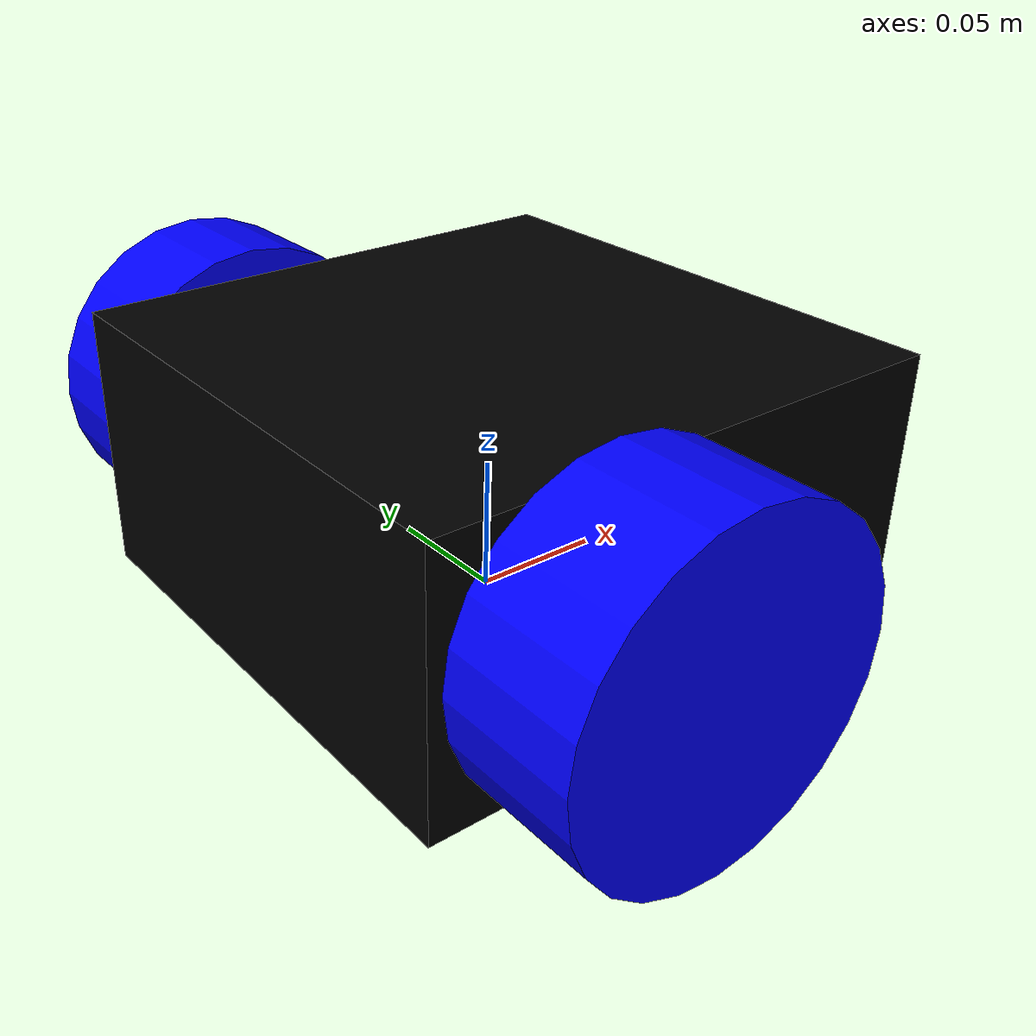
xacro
<?xml version="1.0"?>
<robot xmlns:xacro="https://www.ros.org/wiki/xacro">

    <xacro:include filename='inertial_macros.xacro'/>

    <!--SETTING UP MATERIAL AND COLORS-->
    <material name='white'>
        <color rgba='1 1 1 1' />
    </material>

    <material name='black'>
        <color rgba='0 0 0 1' />
    </material>

    <material name='blue'>
        <color rgba='0 0 1 1' />
    </material>

    <material name='red'>
        <color rgba='1 0 0 1' />
    </material>

    <!--CREAATING BASE LINK-->

    <link name='base_link'>

    </link>

    <!--BODY LINK-->

    <joint name='body_joint' type='fixed'>
        <parent link='base_link'/>
        <child link ='body'/>
        <origin xyz='-0.1 0 0'/>
    </joint>

    <link name='body'>
        <visual>
            <origin xyz='0.1 0 0.05'/>
            <geometry>
                <box size='0.2 0.2 0.1'/>
            </geometry>
            <material name="black"/>
        </visual>

        <collision>
            <origin xyz='0.1 0 0.05'/>
            <geometry>
                <box size='0.2 0.2 0.1'/>
            </geometry>
        </collision>
        <xacro:inertial_box mass='0.5' x='0.2' y='0.2' z='0.1'>
            <origin xyz='0.1 0 0.05' rpy='0 0 0'/>
        </xacro:inertial_box>
    </link>

    <gazebo reference='body'>
        <material>Gazebo/Black</material>
    </gazebo>

    <!--LEFT WHEEL LINK-->

    <joint name='left_wheel_joint' type='continuous'>
        <parent link='base_link'/>
        <child link='left_wheel_link'/>
        <origin xyz='-0.035 0.125 0.05' rpy='-${pi/2} 0 0'/>
        <axis xyz='0 0 1'/>
    </joint>

    <link name='left_wheel_link'>
        <visual>
            <geometry>
                <cylinder radius='0.06' length='0.05'/>
            </geometry>
            <material name='blue'/>
        </visual>

        <collision>
            <geometry>
                <cylinder radius='0.06' length='0.05'/>
            </geometry>
        </collision>
        <xacro:inertial_cylinder mass='0.1' length='0.05' radius='0.06'>
            <origin xyz='0 0 0' rpy='0 0 0'/>
        </xacro:inertial_cylinder>
    </link>

    <gazebo reference='left_wheel_link'>
        <material>Gazebo/Blue</material>
    </gazebo>

    <!--RIGHT WHEEL LINK-->

    <joint name='right_wheel_joint' type='continuous'>
        <parent link='base_link'/>
        <child link='right_wheel_link'/>
        <origin xyz='-0.035 -0.125 0.05' rpy='${pi/2} 0 0'/>
        <axis xyz='0 0 -1'/>
    </joint>

    <link name='right_wheel_link'>
        <visual>
            <geometry>
                <cylinder radius='0.06' length='0.05'/>
            </geometry>
            <material name='blue'/>
        </visual>

        <collision>
            <geometry>
                <cylinder radius='0.06' length='0.05'/>
            </geometry>

        </collision>
        <xacro:inertial_cylinder mass='0.1' length='0.05' radius='0.06'>
            <origin xyz='0 0 0' rpy='0 0 0'/>
        </xacro:inertial_cylinder>
    </link>

    <gazebo reference='right_wheel_link'>
        <material>Gazebo/Blue</material>
    </gazebo>

    <!--CASTER WHEEL-->

    <joint name='caster_wheel_joint' type='fixed'>
        <parent link='body'/>
        <child link='castor_wheel_link'/>
        <origin xyz='0.161 0 0'/>
    </joint>

    <link name='castor_wheel_link'>
        <visual>
            <geometry>
                <sphere radius='0.021'/>
            </geometry>
            <material name='white'/>
        </visual>

        <collision>
            <geometry>
                <sphere radius='0.021'/>
            </geometry>
        </collision>
        <xacro:inertial_sphere mass='0.1' radius='0.021'>
            <origin xyz='0 0 0' rpy='0 0 0'/>
        </xacro:inertial_sphere>
    </link>

    <gazebo reference='castor_wheel_link'>
        <material>Gazebo/White</material>
        <mu1 value='0.001'/>
        <mu2 value='0.001'/>
    </gazebo>

</robot>
